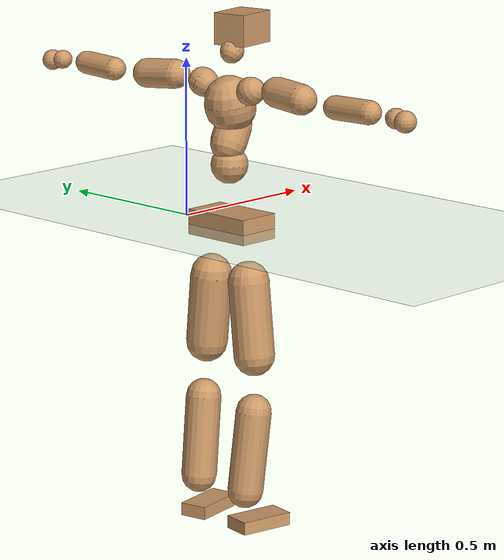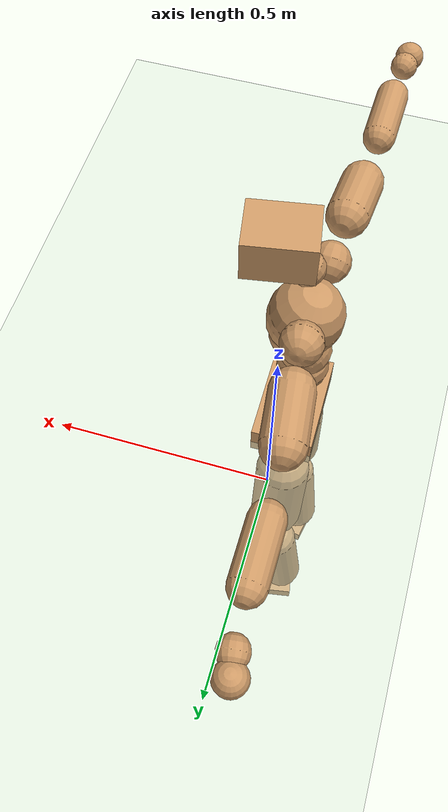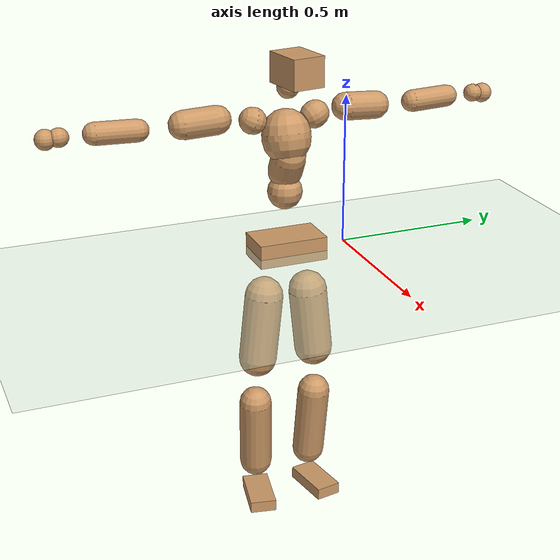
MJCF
<mujoco model="humanoid">
  <compiler coordinate="local" angle="radian"/>
  <default>
    <joint damping="0.0" armature="0.01" stiffness="0.0" limited="true"/>
    <geom conaffinity="1" condim="3" contype="7" margin="0.001" rgba="0.8 0.6 .4 1"/>
  </default>
  <asset>
    <texture type="skybox" builtin="gradient" rgb1=".4 .5 .6" rgb2="0 0 0" width="100" height="100"/>
    <texture builtin="flat" height="1278" mark="cross" markrgb="1 1 1" name="texgeom" random="0.01" rgb1="0.8 0.6 0.4" rgb2="0.8 0.6 0.4" type="cube" width="127"/>
    <texture builtin="checker" height="100" name="texplane" rgb1="0 0 0" rgb2="0.8 0.8 0.8" type="2d" width="100"/>
    <material name="MatPlane" reflectance="0.5" shininess="1" specular="1" texrepeat="60 60" texture="texplane"/>
    <material name="geom" texture="texgeom" texuniform="true"/>
  </asset>
  <worldbody>
    <light cutoff="100" diffuse="1 1 1" dir="-0 0 -1.3" directional="true" exponent="1" pos="0 0 1.3" specular=".1 .1 .1"/>
    <geom conaffinity="1" condim="3" name="floor" pos="0 0 0" rgba="0.8 0.9 0.8 1" size="100 100 .2" type="plane" material="MatPlane"/>
    <body name="Pelvis" pos="0.0002 -0.2029 0.0186">
      <freejoint name="Pelvis"/>
      <geom type="box" contype="1" conaffinity="1" density="5359.374955" pos="-0.0073 -0.0000 -0.0127" size="0.0707 0.1171 0.0395" quat="1.0000 0.0000 0.0000 0.0028" name="Pelvis"/>
      <body name="L_Hip" pos="-0.0154 0.0713 -0.092">
        <joint name="L_Hip_x" type="hinge" pos="0 0 0" axis="1 0 0" stiffness="1600" damping="160" armature="0.02" range="-180.0000 180.0000"/>
        <joint name="L_Hip_y" type="hinge" pos="0 0 0" axis="0 1 0" stiffness="1600" damping="160" armature="0.02" range="-180.0000 180.0000"/>
        <joint name="L_Hip_z" type="hinge" pos="0 0 0" axis="0 0 1" stiffness="1600" damping="160" armature="0.02" range="-180.0000 180.0000"/>
        <geom type="capsule" contype="1" conaffinity="1" density="2040.816327" size="0.0656" fromto="0.0011 0.0095 -0.0951 0.0036 0.0316 -0.3157" name="L_Hip"/>
        <body name="L_Knee" pos="0.0047 0.0411 -0.4108">
          <joint name="L_Knee_x" type="hinge" pos="0 0 0" axis="1 0 0" stiffness="1600" damping="160" armature="0.02" range="-180.0000 180.0000"/>
          <joint name="L_Knee_y" type="hinge" pos="0 0 0" axis="0 1 0" stiffness="1600" damping="160" armature="0.02" range="-180.0000 180.0000"/>
          <joint name="L_Knee_z" type="hinge" pos="0 0 0" axis="0 0 1" stiffness="1600" damping="160" armature="0.02" range="-180.0000 180.0000"/>
          <geom type="capsule" contype="1" conaffinity="1" density="1234.567901" size="0.056" fromto="-0.0094 -0.0025 -0.0855 -0.0375 -0.0098 -0.3392" name="L_Knee"/>
          <body name="L_Ankle" pos="-0.0469 -0.0122 -0.4247">
            <joint name="L_Ankle_x" type="hinge" pos="0 0 0" axis="1 0 0" stiffness="1600" damping="160" armature="0.02" range="-180.0000 180.0000"/>
            <joint name="L_Ankle_y" type="hinge" pos="0 0 0" axis="0 1 0" stiffness="1600" damping="160" armature="0.02" range="-180.0000 180.0000"/>
            <joint name="L_Ankle_z" type="hinge" pos="0 0 0" axis="0 0 1" stiffness="1600" damping="160" armature="0.02" range="-180.0000 180.0000"/>
            <geom type="box" contype="1" conaffinity="1" density="1000.000011" pos="0.0612 0.0111 -0.0288" size="0.088 0.0442 0.0205" quat="0.9960 0.0000 0.0000 0.0893" name="L_Ankle"/>
            <body name="L_Toe" pos="0.1225 0.0221 -0.0577">
              <joint name="L_Toe_x" type="hinge" pos="0 0 0" axis="1 0 0" stiffness="1000" damping="100" armature="0.02" range="-180.0000 180.0000"/>
              <joint name="L_Toe_y" type="hinge" pos="0 0 0" axis="0 1 0" stiffness="1000" damping="100" armature="0.02" range="-180.0000 180.0000"/>
              <joint name="L_Toe_z" type="hinge" pos="0 0 0" axis="0 0 1" stiffness="1000" damping="100" armature="0.02" range="-180.0000 180.0000"/>
              <geom type="box" contype="1" conaffinity="1" density="9256985.910891" pos="0.0000 0.0000 0.0294" size="0.0008 0.0022 0.0011" quat="0.9954 0.0000 0.0000 0.0957" name="L_Toe"/>
            </body>
          </body>
        </body>
      </body>
      <body name="R_Hip" pos="-0.0123 -0.0685 -0.0895">
        <joint name="R_Hip_x" type="hinge" pos="0 0 0" axis="1 0 0" stiffness="1600" damping="160" armature="0.02" range="-180.0000 180.0000"/>
        <joint name="R_Hip_y" type="hinge" pos="0 0 0" axis="0 1 0" stiffness="1600" damping="160" armature="0.02" range="-180.0000 180.0000"/>
        <joint name="R_Hip_z" type="hinge" pos="0 0 0" axis="0 0 1" stiffness="1600" damping="160" armature="0.02" range="-180.0000 180.0000"/>
        <geom type="capsule" contype="1" conaffinity="1" density="2040.816327" size="0.0647" fromto="0.0001 -0.0102 -0.0941 0.0002 -0.0351 -0.3254" name="R_Hip"/>
        <body name="R_Knee" pos="0.0003 -0.0453 -0.4195">
          <joint name="R_Knee_x" type="hinge" pos="0 0 0" axis="1 0 0" stiffness="1600" damping="160" armature="0.02" range="-180.0000 180.0000"/>
          <joint name="R_Knee_y" type="hinge" pos="0 0 0" axis="0 1 0" stiffness="1600" damping="160" armature="0.02" range="-180.0000 180.0000"/>
          <joint name="R_Knee_z" type="hinge" pos="0 0 0" axis="0 0 1" stiffness="1600" damping="160" armature="0.02" range="-180.0000 180.0000"/>
          <geom type="capsule" contype="1" conaffinity="1" density="1234.567901" size="0.0563" fromto="-0.0092 0.0031 -0.0858 -0.0361 0.0121 -0.3377" name="R_Knee"/>
          <body name="R_Ankle" pos="-0.0453 0.0152 -0.4235">
            <joint name="R_Ankle_x" type="hinge" pos="0 0 0" axis="1 0 0" stiffness="1600" damping="160" armature="0.02" range="-180.0000 180.0000"/>
            <joint name="R_Ankle_y" type="hinge" pos="0 0 0" axis="0 1 0" stiffness="1600" damping="160" armature="0.02" range="-180.0000 180.0000"/>
            <joint name="R_Ankle_z" type="hinge" pos="0 0 0" axis="0 0 1" stiffness="1600" damping="160" armature="0.02" range="-180.0000 180.0000"/>
            <geom type="box" contype="1" conaffinity="1" density="1000.000033" pos="0.0624 -0.0113 -0.0248" size="0.0882 0.0451 0.0203" quat="0.9960 0.0000 0.0000 -0.0896" name="R_Ankle"/>
            <body name="R_Toe" pos="0.1248 -0.0227 -0.0495">
              <joint name="R_Toe_x" type="hinge" pos="0 0 0" axis="1 0 0" stiffness="1000" damping="100" armature="0.02" range="-180.0000 180.0000"/>
              <joint name="R_Toe_y" type="hinge" pos="0 0 0" axis="0 1 0" stiffness="1000" damping="100" armature="0.02" range="-180.0000 180.0000"/>
              <joint name="R_Toe_z" type="hinge" pos="0 0 0" axis="0 0 1" stiffness="1000" damping="100" armature="0.02" range="-180.0000 180.0000"/>
              <geom type="box" contype="1" conaffinity="1" density="9100952.648522" pos="0.0000 0.0000 0.0269" size="0.0008 0.0022 0.0011" quat="0.9967 0.0000 0.0000 -0.0806" name="R_Toe"/>
            </body>
          </body>
        </body>
      </body>
      <body name="Torso" pos="-0.0161 -0.003 0.1054">
        <joint name="Torso_x" type="hinge" pos="0 0 0" axis="1 0 0" stiffness="2000" damping="200" armature="0.02" range="-180.0000 180.0000"/>
        <joint name="Torso_y" type="hinge" pos="0 0 0" axis="0 1 0" stiffness="2000" damping="200" armature="0.02" range="-180.0000 180.0000"/>
        <joint name="Torso_z" type="hinge" pos="0 0 0" axis="0 0 1" stiffness="2000" damping="200" armature="0.02" range="-180.0000 180.0000"/>
        <geom type="capsule" contype="1" conaffinity="1" density="2040.816327" size="0.058" fromto="-0.0018 0.0018 0.0696 -0.0018 0.0018 0.0716" name="Torso"/>
        <body name="Spine" pos="-0.0036 0.0036 0.1411">
          <joint name="Spine_x" type="hinge" pos="0 0 0" axis="1 0 0" stiffness="2000" damping="200" armature="0.02" range="-180.0000 180.0000"/>
          <joint name="Spine_y" type="hinge" pos="0 0 0" axis="0 1 0" stiffness="2000" damping="200" armature="0.02" range="-180.0000 180.0000"/>
          <joint name="Spine_z" type="hinge" pos="0 0 0" axis="0 0 1" stiffness="2000" damping="200" armature="0.02" range="-180.0000 180.0000"/>
          <geom type="capsule" contype="1" conaffinity="1" density="2040.816327" size="0.0567" fromto="0.0254 0.0015 0.0506 -0.0013 -0.0001 -0.0026" name="Spine"/>
          <body name="Chest" pos="0.0241 0.0014 0.048">
            <joint name="Chest_x" type="hinge" pos="0 0 0" axis="1 0 0" stiffness="2000" damping="200" armature="0.02" range="-180.0000 180.0000"/>
            <joint name="Chest_y" type="hinge" pos="0 0 0" axis="0 1 0" stiffness="2000" damping="200" armature="0.02" range="-180.0000 180.0000"/>
            <joint name="Chest_z" type="hinge" pos="0 0 0" axis="0 0 1" stiffness="2000" damping="200" armature="0.02" range="-180.0000 180.0000"/>
            <geom type="capsule" contype="1" conaffinity="1" density="2040.816327" size="0.0802" fromto="-0.0181 -0.0008 0.0781 -0.0140 -0.0006 0.0604" name="Chest"/>
            <body name="Neck" pos="-0.0327 -0.0024 0.1989">
              <joint name="Neck_x" type="hinge" pos="0 0 0" axis="1 0 0" stiffness="1000" damping="100" armature="0.02" range="-180.0000 180.0000"/>
              <joint name="Neck_y" type="hinge" pos="0 0 0" axis="0 1 0" stiffness="1000" damping="100" armature="0.02" range="-180.0000 180.0000"/>
              <joint name="Neck_z" type="hinge" pos="0 0 0" axis="0 0 1" stiffness="1000" damping="100" armature="0.02" range="-180.0000 180.0000"/>
              <geom type="capsule" contype="1" conaffinity="1" density="1000" size="0.037" fromto="0.0252 0.0035 0.0322 0.0264 0.0036 0.0337" name="Neck"/>
              <body name="Head" pos="0.0516 0.0071 0.0659">
                <joint name="Head_x" type="hinge" pos="0 0 0" axis="1 0 0" stiffness="1000" damping="100" armature="0.02" range="-180.0000 180.0000"/>
                <joint name="Head_y" type="hinge" pos="0 0 0" axis="0 1 0" stiffness="1000" damping="100" armature="0.02" range="-180.0000 180.0000"/>
                <joint name="Head_z" type="hinge" pos="0 0 0" axis="0 0 1" stiffness="1000" damping="100" armature="0.02" range="-180.0000 180.0000"/>
                <geom type="box" contype="1" conaffinity="1" density="2250.00006" pos="0.0268 0.0045 0.0340" size="0.072 0.055 0.0492" quat="0.9965 0.0000 0.0000 0.0838" name="Head"/>
              </body>
            </body>
            <body name="L_Thorax" pos="-0.0286 0.0646 0.1092">
              <joint name="L_Thorax_x" type="hinge" pos="0 0 0" axis="1 0 0" stiffness="1000" damping="100" armature="0.02" range="-180.0000 180.0000"/>
              <joint name="L_Thorax_y" type="hinge" pos="0 0 0" axis="0 1 0" stiffness="1000" damping="100" armature="0.02" range="-180.0000 180.0000"/>
              <joint name="L_Thorax_z" type="hinge" pos="0 0 0" axis="0 0 1" stiffness="1000" damping="100" armature="0.02" range="-180.0000 180.0000"/>
              <geom type="capsule" contype="1" conaffinity="1" density="1000" size="0.0448" fromto="-0.0009 0.0403 0.0196 -0.0008 0.0344 0.0168" name="L_Thorax"/>
              <body name="L_Shoulder" pos="-0.0017 0.0747 0.0364">
                <joint name="L_Shoulder_x" type="hinge" pos="0 0 0" axis="1 0 0" stiffness="1000" damping="100" armature="0.02" range="-720.0000 720.0000"/>
                <joint name="L_Shoulder_y" type="hinge" pos="0 0 0" axis="0 1 0" stiffness="1000" damping="100" armature="0.02" range="-720.0000 720.0000"/>
                <joint name="L_Shoulder_z" type="hinge" pos="0 0 0" axis="0 0 1" stiffness="1000" damping="100" armature="0.02" range="-720.0000 720.0000"/>
                <geom type="capsule" contype="1" conaffinity="1" density="1000" size="0.0462" fromto="-0.0083 0.0755 -0.0063 -0.0206 0.1873 -0.0155" name="L_Shoulder"/>
                <body name="L_Elbow" pos="-0.0288 0.2627 -0.0218">
                  <joint name="L_Elbow_x" type="hinge" pos="0 0 0" axis="1 0 0" stiffness="1000" damping="100" armature="0.02" range="-720.0000 720.0000"/>
                  <joint name="L_Elbow_y" type="hinge" pos="0 0 0" axis="0 1 0" stiffness="1000" damping="100" armature="0.02" range="-720.0000 720.0000"/>
                  <joint name="L_Elbow_z" type="hinge" pos="0 0 0" axis="0 0 1" stiffness="1000" damping="100" armature="0.02" range="-720.0000 720.0000"/>
                  <geom type="capsule" contype="1" conaffinity="1" density="1000" size="0.0365" fromto="-0.0001 0.0665 0.0029 -0.0002 0.1934 0.0084" name="L_Elbow"/>
                  <body name="L_Wrist" pos="-0.0003 0.2599 0.0113">
                    <joint name="L_Wrist_x" type="hinge" pos="0 0 0" axis="1 0 0" stiffness="600" damping="60" armature="0.02" range="-180.0000 180.0000"/>
                    <joint name="L_Wrist_y" type="hinge" pos="0 0 0" axis="0 1 0" stiffness="600" damping="60" armature="0.02" range="-180.0000 180.0000"/>
                    <joint name="L_Wrist_z" type="hinge" pos="0 0 0" axis="0 0 1" stiffness="600" damping="60" armature="0.02" range="-180.0000 180.0000"/>
                    <geom type="capsule" contype="1" conaffinity="1" density="1000" size="0.0299" fromto="-0.0068 0.0395 -0.0051 -0.0071 0.0415 -0.0053" name="L_Wrist"/>
                    <body name="L_Hand" pos="-0.014 0.081 -0.0104">
                      <joint name="L_Hand_x" type="hinge" pos="0 0 0" axis="1 0 0" stiffness="600" damping="60" armature="0.02" range="-180.0000 180.0000"/>
                      <joint name="L_Hand_y" type="hinge" pos="0 0 0" axis="0 1 0" stiffness="600" damping="60" armature="0.02" range="-180.0000 180.0000"/>
                      <joint name="L_Hand_z" type="hinge" pos="0 0 0" axis="0 0 1" stiffness="600" damping="60" armature="0.02" range="-180.0000 180.0000"/>
                      <geom type="sphere" contype="1" conaffinity="1" density="1000" size="0.0325" pos="0.0000 0.0000 0.0000" name="L_Hand"/>
                    </body>
                  </body>
                </body>
              </body>
            </body>
            <body name="R_Thorax" pos="-0.035 -0.0663 0.1072">
              <joint name="R_Thorax_x" type="hinge" pos="0 0 0" axis="1 0 0" stiffness="1000" damping="100" armature="0.02" range="-180.0000 180.0000"/>
              <joint name="R_Thorax_y" type="hinge" pos="0 0 0" axis="0 1 0" stiffness="1000" damping="100" armature="0.02" range="-180.0000 180.0000"/>
              <joint name="R_Thorax_z" type="hinge" pos="0 0 0" axis="0 0 1" stiffness="1000" damping="100" armature="0.02" range="-180.0000 180.0000"/>
              <geom type="capsule" contype="1" conaffinity="1" density="1000" size="0.0439" fromto="-0.0021 -0.0398 0.0176 -0.0022 -0.0416 0.0184" name="R_Thorax"/>
              <body name="R_Shoulder" pos="-0.0043 -0.0814 0.036">
                <joint name="R_Shoulder_x" type="hinge" pos="0 0 0" axis="1 0 0" stiffness="1000" damping="100" armature="0.02" range="-720.0000 720.0000"/>
                <joint name="R_Shoulder_y" type="hinge" pos="0 0 0" axis="0 1 0" stiffness="1000" damping="100" armature="0.02" range="-720.0000 720.0000"/>
                <joint name="R_Shoulder_z" type="hinge" pos="0 0 0" axis="0 0 1" stiffness="1000" damping="100" armature="0.02" range="-720.0000 720.0000"/>
                <geom type="capsule" contype="1" conaffinity="1" density="1000" size="0.0469" fromto="-0.0064 -0.0765 -0.0052 -0.0154 -0.1843 -0.0125" name="R_Shoulder"/>
                <body name="R_Elbow" pos="-0.0217 -0.2608 -0.0177">
                  <joint name="R_Elbow_x" type="hinge" pos="0 0 0" axis="1 0 0" stiffness="1000" damping="100" armature="0.02" range="-720.0000 720.0000"/>
                  <joint name="R_Elbow_y" type="hinge" pos="0 0 0" axis="0 1 0" stiffness="1000" damping="100" armature="0.02" range="-720.0000 720.0000"/>
                  <joint name="R_Elbow_z" type="hinge" pos="0 0 0" axis="0 0 1" stiffness="1000" damping="100" armature="0.02" range="-720.0000 720.0000"/>
                  <geom type="capsule" contype="1" conaffinity="1" density="1000" size="0.0362" fromto="-0.0015 -0.0662 0.0016 -0.0047 -0.2015 0.0049" name="R_Elbow"/>
                  <body name="R_Wrist" pos="-0.0062 -0.2677 0.0066">
                    <joint name="R_Wrist_x" type="hinge" pos="0 0 0" axis="1 0 0" stiffness="600" damping="60" armature="0.02" range="-180.0000 180.0000"/>
                    <joint name="R_Wrist_y" type="hinge" pos="0 0 0" axis="0 1 0" stiffness="600" damping="60" armature="0.02" range="-180.0000 180.0000"/>
                    <joint name="R_Wrist_z" type="hinge" pos="0 0 0" axis="0 0 1" stiffness="600" damping="60" armature="0.02" range="-180.0000 180.0000"/>
                    <geom type="capsule" contype="1" conaffinity="1" density="1000" size="0.0306" fromto="-0.0052 -0.0400 -0.0036 -0.0055 -0.0420 -0.0038" name="R_Wrist"/>
                    <body name="R_Hand" pos="-0.0108 -0.0819 -0.0074">
                      <joint name="R_Hand_x" type="hinge" pos="0 0 0" axis="1 0 0" stiffness="600" damping="60" armature="0.02" range="-180.0000 180.0000"/>
                      <joint name="R_Hand_y" type="hinge" pos="0 0 0" axis="0 1 0" stiffness="600" damping="60" armature="0.02" range="-180.0000 180.0000"/>
                      <joint name="R_Hand_z" type="hinge" pos="0 0 0" axis="0 0 1" stiffness="600" damping="60" armature="0.02" range="-180.0000 180.0000"/>
                      <geom type="sphere" contype="1" conaffinity="1" density="1000" size="0.0327" pos="0.0000 0.0000 0.0000" name="R_Hand"/>
                    </body>
                  </body>
                </body>
              </body>
            </body>
          </body>
        </body>
      </body>
    </body>
  </worldbody>
  <actuator>
    <motor name="L_Hip_x" joint="L_Hip_x" gear="500"/>
    <motor name="L_Hip_y" joint="L_Hip_y" gear="500"/>
    <motor name="L_Hip_z" joint="L_Hip_z" gear="500"/>
    <motor name="L_Knee_x" joint="L_Knee_x" gear="500"/>
    <motor name="L_Knee_y" joint="L_Knee_y" gear="500"/>
    <motor name="L_Knee_z" joint="L_Knee_z" gear="500"/>
    <motor name="L_Ankle_x" joint="L_Ankle_x" gear="500"/>
    <motor name="L_Ankle_y" joint="L_Ankle_y" gear="500"/>
    <motor name="L_Ankle_z" joint="L_Ankle_z" gear="500"/>
    <motor name="L_Toe_x" joint="L_Toe_x" gear="500"/>
    <motor name="L_Toe_y" joint="L_Toe_y" gear="500"/>
    <motor name="L_Toe_z" joint="L_Toe_z" gear="500"/>
    <motor name="R_Hip_x" joint="R_Hip_x" gear="500"/>
    <motor name="R_Hip_y" joint="R_Hip_y" gear="500"/>
    <motor name="R_Hip_z" joint="R_Hip_z" gear="500"/>
    <motor name="R_Knee_x" joint="R_Knee_x" gear="500"/>
    <motor name="R_Knee_y" joint="R_Knee_y" gear="500"/>
    <motor name="R_Knee_z" joint="R_Knee_z" gear="500"/>
    <motor name="R_Ankle_x" joint="R_Ankle_x" gear="500"/>
    <motor name="R_Ankle_y" joint="R_Ankle_y" gear="500"/>
    <motor name="R_Ankle_z" joint="R_Ankle_z" gear="500"/>
    <motor name="R_Toe_x" joint="R_Toe_x" gear="500"/>
    <motor name="R_Toe_y" joint="R_Toe_y" gear="500"/>
    <motor name="R_Toe_z" joint="R_Toe_z" gear="500"/>
    <motor name="Torso_x" joint="Torso_x" gear="500"/>
    <motor name="Torso_y" joint="Torso_y" gear="500"/>
    <motor name="Torso_z" joint="Torso_z" gear="500"/>
    <motor name="Spine_x" joint="Spine_x" gear="500"/>
    <motor name="Spine_y" joint="Spine_y" gear="500"/>
    <motor name="Spine_z" joint="Spine_z" gear="500"/>
    <motor name="Chest_x" joint="Chest_x" gear="500"/>
    <motor name="Chest_y" joint="Chest_y" gear="500"/>
    <motor name="Chest_z" joint="Chest_z" gear="500"/>
    <motor name="Neck_x" joint="Neck_x" gear="500"/>
    <motor name="Neck_y" joint="Neck_y" gear="500"/>
    <motor name="Neck_z" joint="Neck_z" gear="500"/>
    <motor name="Head_x" joint="Head_x" gear="500"/>
    <motor name="Head_y" joint="Head_y" gear="500"/>
    <motor name="Head_z" joint="Head_z" gear="500"/>
    <motor name="L_Thorax_x" joint="L_Thorax_x" gear="500"/>
    <motor name="L_Thorax_y" joint="L_Thorax_y" gear="500"/>
    <motor name="L_Thorax_z" joint="L_Thorax_z" gear="500"/>
    <motor name="L_Shoulder_x" joint="L_Shoulder_x" gear="500"/>
    <motor name="L_Shoulder_y" joint="L_Shoulder_y" gear="500"/>
    <motor name="L_Shoulder_z" joint="L_Shoulder_z" gear="500"/>
    <motor name="L_Elbow_x" joint="L_Elbow_x" gear="500"/>
    <motor name="L_Elbow_y" joint="L_Elbow_y" gear="500"/>
    <motor name="L_Elbow_z" joint="L_Elbow_z" gear="500"/>
    <motor name="L_Wrist_x" joint="L_Wrist_x" gear="500"/>
    <motor name="L_Wrist_y" joint="L_Wrist_y" gear="500"/>
    <motor name="L_Wrist_z" joint="L_Wrist_z" gear="500"/>
    <motor name="L_Hand_x" joint="L_Hand_x" gear="500"/>
    <motor name="L_Hand_y" joint="L_Hand_y" gear="500"/>
    <motor name="L_Hand_z" joint="L_Hand_z" gear="500"/>
    <motor name="R_Thorax_x" joint="R_Thorax_x" gear="500"/>
    <motor name="R_Thorax_y" joint="R_Thorax_y" gear="500"/>
    <motor name="R_Thorax_z" joint="R_Thorax_z" gear="500"/>
    <motor name="R_Shoulder_x" joint="R_Shoulder_x" gear="500"/>
    <motor name="R_Shoulder_y" joint="R_Shoulder_y" gear="500"/>
    <motor name="R_Shoulder_z" joint="R_Shoulder_z" gear="500"/>
    <motor name="R_Elbow_x" joint="R_Elbow_x" gear="500"/>
    <motor name="R_Elbow_y" joint="R_Elbow_y" gear="500"/>
    <motor name="R_Elbow_z" joint="R_Elbow_z" gear="500"/>
    <motor name="R_Wrist_x" joint="R_Wrist_x" gear="500"/>
    <motor name="R_Wrist_y" joint="R_Wrist_y" gear="500"/>
    <motor name="R_Wrist_z" joint="R_Wrist_z" gear="500"/>
    <motor name="R_Hand_x" joint="R_Hand_x" gear="500"/>
    <motor name="R_Hand_y" joint="R_Hand_y" gear="500"/>
    <motor name="R_Hand_z" joint="R_Hand_z" gear="500"/>
  </actuator>
  <contact>
    <exclude body1="Torso" body2="Chest"/>
    <exclude body1="Head" body2="Chest"/>
    <exclude body1="R_Knee" body2="R_Toe"/>
    <exclude body1="R_Knee" body2="L_Ankle"/>
    <exclude body1="R_Knee" body2="L_Toe"/>
    <exclude body1="L_Knee" body2="L_Toe"/>
    <exclude body1="L_Knee" body2="R_Ankle"/>
    <exclude body1="L_Knee" body2="R_Toe"/>
    <exclude body1="L_Shoulder" body2="Chest"/>
    <exclude body1="R_Shoulder" body2="Chest"/>
  </contact>
  <sensor/>
  <size njmax="700" nconmax="700"/>
</mujoco>
